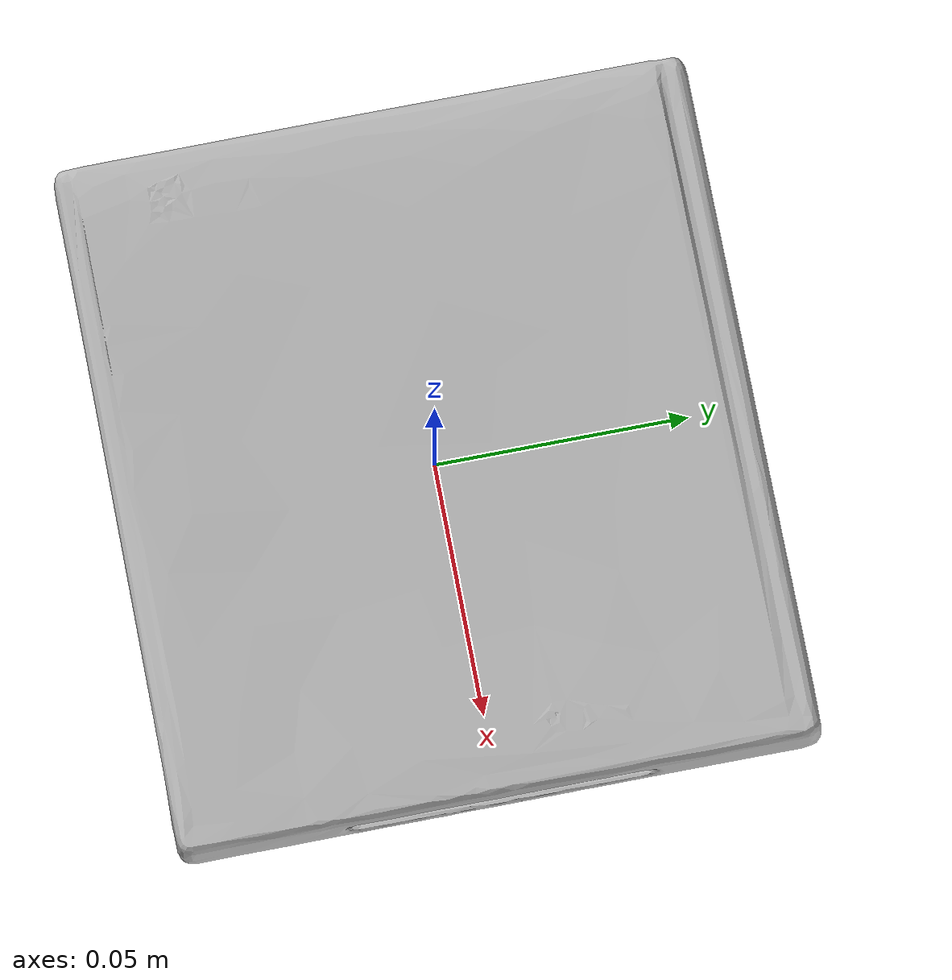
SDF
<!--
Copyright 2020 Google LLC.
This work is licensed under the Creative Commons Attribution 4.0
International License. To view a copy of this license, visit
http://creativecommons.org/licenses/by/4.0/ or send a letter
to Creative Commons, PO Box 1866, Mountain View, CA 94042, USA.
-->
<?xml version="1.0" ?>
<sdf version="1.6">
  <model name="Animal_Crossing_New_Leaf_Nintendo_3DS_Game">
    <link name="link_0">
      <visual name="visual">
        <geometry>
          <mesh>
            <uri>meshes/model.obj</uri>
          </mesh>
        </geometry>
      </visual>
      <collision name="collision_0">
        <geometry>
          <mesh>
            <uri>meshes/model.obj</uri>
          </mesh>
        </geometry>
      </collision>
    </link>
  </model>
</sdf>
